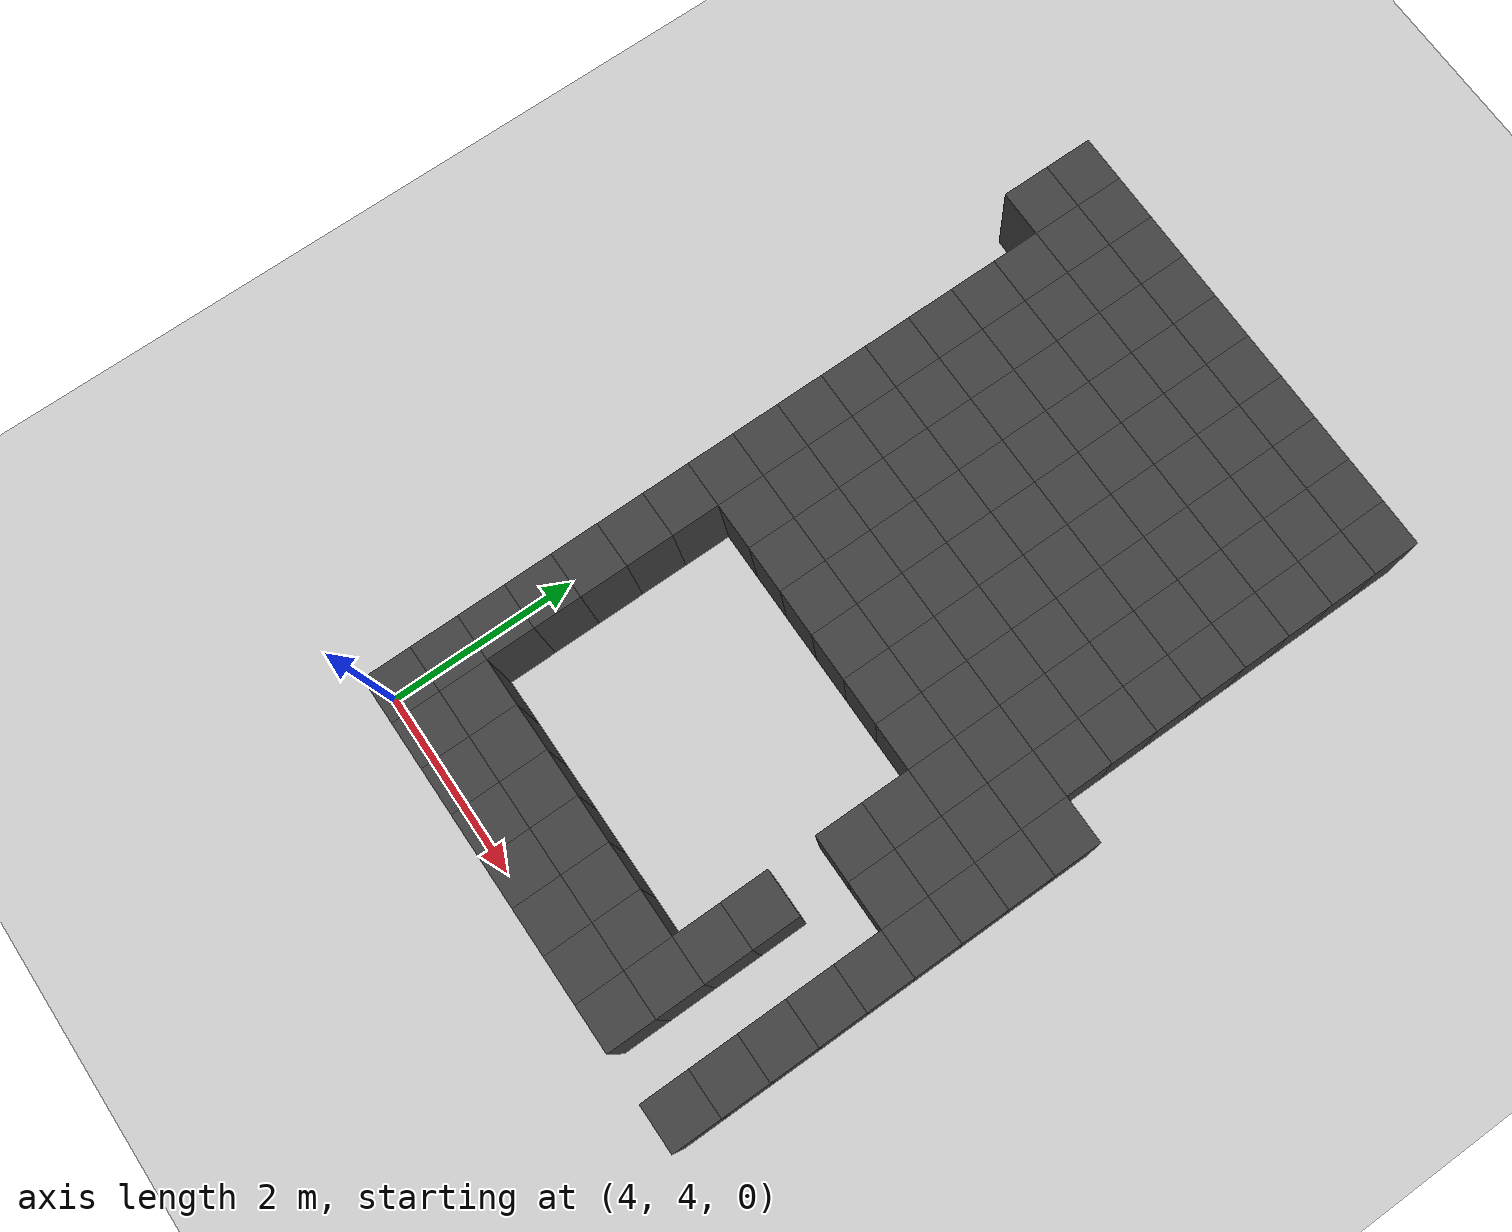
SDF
<sdf version="1.7">
 <world name="map_10777">
  <model name="ground_plane">
   <static>true</static>
   <link name="link">
    <collision name="collision">
     <geometry><plane><normal>0 0 1</normal><size>200 200</size></plane></geometry>
    </collision>
    <visual name="visual">
     <geometry><plane><normal>0 0 1</normal><size>200 200</size></plane></geometry>
     <material><ambient>0.8 0.8 0.8 1</ambient><diffuse>0.8 0.8 0.8 1</diffuse></material>
    </visual>
   </link>
  </model>
  <model name="maze_environment">
   <static>true</static>
   <link name="wall_32">
    <pose>3.750 12.250 0.500 0 0 0</pose>
    <collision name="col"><geometry><box><size>0.5 0.5 1.0</size></box></geometry></collision>
    <visual name="vis">
     <geometry><box><size>0.5 0.5 1.0</size></box></geometry>
     <material><ambient>0.15 0.15 0.15 1</ambient><diffuse>0.25 0.25 0.25 1</diffuse></material>
    </visual>
   </link>
   <link name="wall_33">
    <pose>4.250 12.250 0.500 0 0 0</pose>
    <collision name="col"><geometry><box><size>0.5 0.5 1.0</size></box></geometry></collision>
    <visual name="vis">
     <geometry><box><size>0.5 0.5 1.0</size></box></geometry>
     <material><ambient>0.15 0.15 0.15 1</ambient><diffuse>0.25 0.25 0.25 1</diffuse></material>
    </visual>
   </link>
   <link name="wall_34">
    <pose>4.750 12.250 0.500 0 0 0</pose>
    <collision name="col"><geometry><box><size>0.5 0.5 1.0</size></box></geometry></collision>
    <visual name="vis">
     <geometry><box><size>0.5 0.5 1.0</size></box></geometry>
     <material><ambient>0.15 0.15 0.15 1</ambient><diffuse>0.25 0.25 0.25 1</diffuse></material>
    </visual>
   </link>
   <link name="wall_35">
    <pose>5.250 12.250 0.500 0 0 0</pose>
    <collision name="col"><geometry><box><size>0.5 0.5 1.0</size></box></geometry></collision>
    <visual name="vis">
     <geometry><box><size>0.5 0.5 1.0</size></box></geometry>
     <material><ambient>0.15 0.15 0.15 1</ambient><diffuse>0.25 0.25 0.25 1</diffuse></material>
    </visual>
   </link>
   <link name="wall_36">
    <pose>5.750 12.250 0.500 0 0 0</pose>
    <collision name="col"><geometry><box><size>0.5 0.5 1.0</size></box></geometry></collision>
    <visual name="vis">
     <geometry><box><size>0.5 0.5 1.0</size></box></geometry>
     <material><ambient>0.15 0.15 0.15 1</ambient><diffuse>0.25 0.25 0.25 1</diffuse></material>
    </visual>
   </link>
   <link name="wall_37">
    <pose>6.250 12.250 0.500 0 0 0</pose>
    <collision name="col"><geometry><box><size>0.5 0.5 1.0</size></box></geometry></collision>
    <visual name="vis">
     <geometry><box><size>0.5 0.5 1.0</size></box></geometry>
     <material><ambient>0.15 0.15 0.15 1</ambient><diffuse>0.25 0.25 0.25 1</diffuse></material>
    </visual>
   </link>
   <link name="wall_38">
    <pose>6.750 12.250 0.500 0 0 0</pose>
    <collision name="col"><geometry><box><size>0.5 0.5 1.0</size></box></geometry></collision>
    <visual name="vis">
     <geometry><box><size>0.5 0.5 1.0</size></box></geometry>
     <material><ambient>0.15 0.15 0.15 1</ambient><diffuse>0.25 0.25 0.25 1</diffuse></material>
    </visual>
   </link>
   <link name="wall_39">
    <pose>7.250 12.250 0.500 0 0 0</pose>
    <collision name="col"><geometry><box><size>0.5 0.5 1.0</size></box></geometry></collision>
    <visual name="vis">
     <geometry><box><size>0.5 0.5 1.0</size></box></geometry>
     <material><ambient>0.15 0.15 0.15 1</ambient><diffuse>0.25 0.25 0.25 1</diffuse></material>
    </visual>
   </link>
   <link name="wall_40">
    <pose>7.750 12.250 0.500 0 0 0</pose>
    <collision name="col"><geometry><box><size>0.5 0.5 1.0</size></box></geometry></collision>
    <visual name="vis">
     <geometry><box><size>0.5 0.5 1.0</size></box></geometry>
     <material><ambient>0.15 0.15 0.15 1</ambient><diffuse>0.25 0.25 0.25 1</diffuse></material>
    </visual>
   </link>
   <link name="wall_41">
    <pose>8.250 12.250 0.500 0 0 0</pose>
    <collision name="col"><geometry><box><size>0.5 0.5 1.0</size></box></geometry></collision>
    <visual name="vis">
     <geometry><box><size>0.5 0.5 1.0</size></box></geometry>
     <material><ambient>0.15 0.15 0.15 1</ambient><diffuse>0.25 0.25 0.25 1</diffuse></material>
    </visual>
   </link>
   <link name="wall_79">
    <pose>3.750 11.750 0.500 0 0 0</pose>
    <collision name="col"><geometry><box><size>0.5 0.5 1.0</size></box></geometry></collision>
    <visual name="vis">
     <geometry><box><size>0.5 0.5 1.0</size></box></geometry>
     <material><ambient>0.15 0.15 0.15 1</ambient><diffuse>0.25 0.25 0.25 1</diffuse></material>
    </visual>
   </link>
   <link name="wall_80">
    <pose>4.250 11.750 0.500 0 0 0</pose>
    <collision name="col"><geometry><box><size>0.5 0.5 1.0</size></box></geometry></collision>
    <visual name="vis">
     <geometry><box><size>0.5 0.5 1.0</size></box></geometry>
     <material><ambient>0.15 0.15 0.15 1</ambient><diffuse>0.25 0.25 0.25 1</diffuse></material>
    </visual>
   </link>
   <link name="wall_81">
    <pose>4.750 11.750 0.500 0 0 0</pose>
    <collision name="col"><geometry><box><size>0.5 0.5 1.0</size></box></geometry></collision>
    <visual name="vis">
     <geometry><box><size>0.5 0.5 1.0</size></box></geometry>
     <material><ambient>0.15 0.15 0.15 1</ambient><diffuse>0.25 0.25 0.25 1</diffuse></material>
    </visual>
   </link>
   <link name="wall_82">
    <pose>5.250 11.750 0.500 0 0 0</pose>
    <collision name="col"><geometry><box><size>0.5 0.5 1.0</size></box></geometry></collision>
    <visual name="vis">
     <geometry><box><size>0.5 0.5 1.0</size></box></geometry>
     <material><ambient>0.15 0.15 0.15 1</ambient><diffuse>0.25 0.25 0.25 1</diffuse></material>
    </visual>
   </link>
   <link name="wall_83">
    <pose>5.750 11.750 0.500 0 0 0</pose>
    <collision name="col"><geometry><box><size>0.5 0.5 1.0</size></box></geometry></collision>
    <visual name="vis">
     <geometry><box><size>0.5 0.5 1.0</size></box></geometry>
     <material><ambient>0.15 0.15 0.15 1</ambient><diffuse>0.25 0.25 0.25 1</diffuse></material>
    </visual>
   </link>
   <link name="wall_84">
    <pose>6.250 11.750 0.500 0 0 0</pose>
    <collision name="col"><geometry><box><size>0.5 0.5 1.0</size></box></geometry></collision>
    <visual name="vis">
     <geometry><box><size>0.5 0.5 1.0</size></box></geometry>
     <material><ambient>0.15 0.15 0.15 1</ambient><diffuse>0.25 0.25 0.25 1</diffuse></material>
    </visual>
   </link>
   <link name="wall_85">
    <pose>6.750 11.750 0.500 0 0 0</pose>
    <collision name="col"><geometry><box><size>0.5 0.5 1.0</size></box></geometry></collision>
    <visual name="vis">
     <geometry><box><size>0.5 0.5 1.0</size></box></geometry>
     <material><ambient>0.15 0.15 0.15 1</ambient><diffuse>0.25 0.25 0.25 1</diffuse></material>
    </visual>
   </link>
   <link name="wall_86">
    <pose>7.250 11.750 0.500 0 0 0</pose>
    <collision name="col"><geometry><box><size>0.5 0.5 1.0</size></box></geometry></collision>
    <visual name="vis">
     <geometry><box><size>0.5 0.5 1.0</size></box></geometry>
     <material><ambient>0.15 0.15 0.15 1</ambient><diffuse>0.25 0.25 0.25 1</diffuse></material>
    </visual>
   </link>
   <link name="wall_87">
    <pose>7.750 11.750 0.500 0 0 0</pose>
    <collision name="col"><geometry><box><size>0.5 0.5 1.0</size></box></geometry></collision>
    <visual name="vis">
     <geometry><box><size>0.5 0.5 1.0</size></box></geometry>
     <material><ambient>0.15 0.15 0.15 1</ambient><diffuse>0.25 0.25 0.25 1</diffuse></material>
    </visual>
   </link>
   <link name="wall_88">
    <pose>8.250 11.750 0.500 0 0 0</pose>
    <collision name="col"><geometry><box><size>0.5 0.5 1.0</size></box></geometry></collision>
    <visual name="vis">
     <geometry><box><size>0.5 0.5 1.0</size></box></geometry>
     <material><ambient>0.15 0.15 0.15 1</ambient><diffuse>0.25 0.25 0.25 1</diffuse></material>
    </visual>
   </link>
   <link name="wall_127">
    <pose>4.250 11.250 0.500 0 0 0</pose>
    <collision name="col"><geometry><box><size>0.5 0.5 1.0</size></box></geometry></collision>
    <visual name="vis">
     <geometry><box><size>0.5 0.5 1.0</size></box></geometry>
     <material><ambient>0.15 0.15 0.15 1</ambient><diffuse>0.25 0.25 0.25 1</diffuse></material>
    </visual>
   </link>
   <link name="wall_128">
    <pose>4.750 11.250 0.500 0 0 0</pose>
    <collision name="col"><geometry><box><size>0.5 0.5 1.0</size></box></geometry></collision>
    <visual name="vis">
     <geometry><box><size>0.5 0.5 1.0</size></box></geometry>
     <material><ambient>0.15 0.15 0.15 1</ambient><diffuse>0.25 0.25 0.25 1</diffuse></material>
    </visual>
   </link>
   <link name="wall_129">
    <pose>5.250 11.250 0.500 0 0 0</pose>
    <collision name="col"><geometry><box><size>0.5 0.5 1.0</size></box></geometry></collision>
    <visual name="vis">
     <geometry><box><size>0.5 0.5 1.0</size></box></geometry>
     <material><ambient>0.15 0.15 0.15 1</ambient><diffuse>0.25 0.25 0.25 1</diffuse></material>
    </visual>
   </link>
   <link name="wall_130">
    <pose>5.750 11.250 0.500 0 0 0</pose>
    <collision name="col"><geometry><box><size>0.5 0.5 1.0</size></box></geometry></collision>
    <visual name="vis">
     <geometry><box><size>0.5 0.5 1.0</size></box></geometry>
     <material><ambient>0.15 0.15 0.15 1</ambient><diffuse>0.25 0.25 0.25 1</diffuse></material>
    </visual>
   </link>
   <link name="wall_131">
    <pose>6.250 11.250 0.500 0 0 0</pose>
    <collision name="col"><geometry><box><size>0.5 0.5 1.0</size></box></geometry></collision>
    <visual name="vis">
     <geometry><box><size>0.5 0.5 1.0</size></box></geometry>
     <material><ambient>0.15 0.15 0.15 1</ambient><diffuse>0.25 0.25 0.25 1</diffuse></material>
    </visual>
   </link>
   <link name="wall_132">
    <pose>6.750 11.250 0.500 0 0 0</pose>
    <collision name="col"><geometry><box><size>0.5 0.5 1.0</size></box></geometry></collision>
    <visual name="vis">
     <geometry><box><size>0.5 0.5 1.0</size></box></geometry>
     <material><ambient>0.15 0.15 0.15 1</ambient><diffuse>0.25 0.25 0.25 1</diffuse></material>
    </visual>
   </link>
   <link name="wall_133">
    <pose>7.250 11.250 0.500 0 0 0</pose>
    <collision name="col"><geometry><box><size>0.5 0.5 1.0</size></box></geometry></collision>
    <visual name="vis">
     <geometry><box><size>0.5 0.5 1.0</size></box></geometry>
     <material><ambient>0.15 0.15 0.15 1</ambient><diffuse>0.25 0.25 0.25 1</diffuse></material>
    </visual>
   </link>
   <link name="wall_134">
    <pose>7.750 11.250 0.500 0 0 0</pose>
    <collision name="col"><geometry><box><size>0.5 0.5 1.0</size></box></geometry></collision>
    <visual name="vis">
     <geometry><box><size>0.5 0.5 1.0</size></box></geometry>
     <material><ambient>0.15 0.15 0.15 1</ambient><diffuse>0.25 0.25 0.25 1</diffuse></material>
    </visual>
   </link>
   <link name="wall_135">
    <pose>8.250 11.250 0.500 0 0 0</pose>
    <collision name="col"><geometry><box><size>0.5 0.5 1.0</size></box></geometry></collision>
    <visual name="vis">
     <geometry><box><size>0.5 0.5 1.0</size></box></geometry>
     <material><ambient>0.15 0.15 0.15 1</ambient><diffuse>0.25 0.25 0.25 1</diffuse></material>
    </visual>
   </link>
   <link name="wall_174">
    <pose>4.250 10.750 0.500 0 0 0</pose>
    <collision name="col"><geometry><box><size>0.5 0.5 1.0</size></box></geometry></collision>
    <visual name="vis">
     <geometry><box><size>0.5 0.5 1.0</size></box></geometry>
     <material><ambient>0.15 0.15 0.15 1</ambient><diffuse>0.25 0.25 0.25 1</diffuse></material>
    </visual>
   </link>
   <link name="wall_175">
    <pose>4.750 10.750 0.500 0 0 0</pose>
    <collision name="col"><geometry><box><size>0.5 0.5 1.0</size></box></geometry></collision>
    <visual name="vis">
     <geometry><box><size>0.5 0.5 1.0</size></box></geometry>
     <material><ambient>0.15 0.15 0.15 1</ambient><diffuse>0.25 0.25 0.25 1</diffuse></material>
    </visual>
   </link>
   <link name="wall_176">
    <pose>5.250 10.750 0.500 0 0 0</pose>
    <collision name="col"><geometry><box><size>0.5 0.5 1.0</size></box></geometry></collision>
    <visual name="vis">
     <geometry><box><size>0.5 0.5 1.0</size></box></geometry>
     <material><ambient>0.15 0.15 0.15 1</ambient><diffuse>0.25 0.25 0.25 1</diffuse></material>
    </visual>
   </link>
   <link name="wall_177">
    <pose>5.750 10.750 0.500 0 0 0</pose>
    <collision name="col"><geometry><box><size>0.5 0.5 1.0</size></box></geometry></collision>
    <visual name="vis">
     <geometry><box><size>0.5 0.5 1.0</size></box></geometry>
     <material><ambient>0.15 0.15 0.15 1</ambient><diffuse>0.25 0.25 0.25 1</diffuse></material>
    </visual>
   </link>
   <link name="wall_178">
    <pose>6.250 10.750 0.500 0 0 0</pose>
    <collision name="col"><geometry><box><size>0.5 0.5 1.0</size></box></geometry></collision>
    <visual name="vis">
     <geometry><box><size>0.5 0.5 1.0</size></box></geometry>
     <material><ambient>0.15 0.15 0.15 1</ambient><diffuse>0.25 0.25 0.25 1</diffuse></material>
    </visual>
   </link>
   <link name="wall_179">
    <pose>6.750 10.750 0.500 0 0 0</pose>
    <collision name="col"><geometry><box><size>0.5 0.5 1.0</size></box></geometry></collision>
    <visual name="vis">
     <geometry><box><size>0.5 0.5 1.0</size></box></geometry>
     <material><ambient>0.15 0.15 0.15 1</ambient><diffuse>0.25 0.25 0.25 1</diffuse></material>
    </visual>
   </link>
   <link name="wall_180">
    <pose>7.250 10.750 0.500 0 0 0</pose>
    <collision name="col"><geometry><box><size>0.5 0.5 1.0</size></box></geometry></collision>
    <visual name="vis">
     <geometry><box><size>0.5 0.5 1.0</size></box></geometry>
     <material><ambient>0.15 0.15 0.15 1</ambient><diffuse>0.25 0.25 0.25 1</diffuse></material>
    </visual>
   </link>
   <link name="wall_181">
    <pose>7.750 10.750 0.500 0 0 0</pose>
    <collision name="col"><geometry><box><size>0.5 0.5 1.0</size></box></geometry></collision>
    <visual name="vis">
     <geometry><box><size>0.5 0.5 1.0</size></box></geometry>
     <material><ambient>0.15 0.15 0.15 1</ambient><diffuse>0.25 0.25 0.25 1</diffuse></material>
    </visual>
   </link>
   <link name="wall_182">
    <pose>8.250 10.750 0.500 0 0 0</pose>
    <collision name="col"><geometry><box><size>0.5 0.5 1.0</size></box></geometry></collision>
    <visual name="vis">
     <geometry><box><size>0.5 0.5 1.0</size></box></geometry>
     <material><ambient>0.15 0.15 0.15 1</ambient><diffuse>0.25 0.25 0.25 1</diffuse></material>
    </visual>
   </link>
   <link name="wall_223">
    <pose>4.250 10.250 0.500 0 0 0</pose>
    <collision name="col"><geometry><box><size>0.5 0.5 1.0</size></box></geometry></collision>
    <visual name="vis">
     <geometry><box><size>0.5 0.5 1.0</size></box></geometry>
     <material><ambient>0.15 0.15 0.15 1</ambient><diffuse>0.25 0.25 0.25 1</diffuse></material>
    </visual>
   </link>
   <link name="wall_224">
    <pose>4.750 10.250 0.500 0 0 0</pose>
    <collision name="col"><geometry><box><size>0.5 0.5 1.0</size></box></geometry></collision>
    <visual name="vis">
     <geometry><box><size>0.5 0.5 1.0</size></box></geometry>
     <material><ambient>0.15 0.15 0.15 1</ambient><diffuse>0.25 0.25 0.25 1</diffuse></material>
    </visual>
   </link>
   <link name="wall_225">
    <pose>5.250 10.250 0.500 0 0 0</pose>
    <collision name="col"><geometry><box><size>0.5 0.5 1.0</size></box></geometry></collision>
    <visual name="vis">
     <geometry><box><size>0.5 0.5 1.0</size></box></geometry>
     <material><ambient>0.15 0.15 0.15 1</ambient><diffuse>0.25 0.25 0.25 1</diffuse></material>
    </visual>
   </link>
   <link name="wall_226">
    <pose>5.750 10.250 0.500 0 0 0</pose>
    <collision name="col"><geometry><box><size>0.5 0.5 1.0</size></box></geometry></collision>
    <visual name="vis">
     <geometry><box><size>0.5 0.5 1.0</size></box></geometry>
     <material><ambient>0.15 0.15 0.15 1</ambient><diffuse>0.25 0.25 0.25 1</diffuse></material>
    </visual>
   </link>
   <link name="wall_227">
    <pose>6.250 10.250 0.500 0 0 0</pose>
    <collision name="col"><geometry><box><size>0.5 0.5 1.0</size></box></geometry></collision>
    <visual name="vis">
     <geometry><box><size>0.5 0.5 1.0</size></box></geometry>
     <material><ambient>0.15 0.15 0.15 1</ambient><diffuse>0.25 0.25 0.25 1</diffuse></material>
    </visual>
   </link>
   <link name="wall_228">
    <pose>6.750 10.250 0.500 0 0 0</pose>
    <collision name="col"><geometry><box><size>0.5 0.5 1.0</size></box></geometry></collision>
    <visual name="vis">
     <geometry><box><size>0.5 0.5 1.0</size></box></geometry>
     <material><ambient>0.15 0.15 0.15 1</ambient><diffuse>0.25 0.25 0.25 1</diffuse></material>
    </visual>
   </link>
   <link name="wall_229">
    <pose>7.250 10.250 0.500 0 0 0</pose>
    <collision name="col"><geometry><box><size>0.5 0.5 1.0</size></box></geometry></collision>
    <visual name="vis">
     <geometry><box><size>0.5 0.5 1.0</size></box></geometry>
     <material><ambient>0.15 0.15 0.15 1</ambient><diffuse>0.25 0.25 0.25 1</diffuse></material>
    </visual>
   </link>
   <link name="wall_230">
    <pose>7.750 10.250 0.500 0 0 0</pose>
    <collision name="col"><geometry><box><size>0.5 0.5 1.0</size></box></geometry></collision>
    <visual name="vis">
     <geometry><box><size>0.5 0.5 1.0</size></box></geometry>
     <material><ambient>0.15 0.15 0.15 1</ambient><diffuse>0.25 0.25 0.25 1</diffuse></material>
    </visual>
   </link>
   <link name="wall_231">
    <pose>8.250 10.250 0.500 0 0 0</pose>
    <collision name="col"><geometry><box><size>0.5 0.5 1.0</size></box></geometry></collision>
    <visual name="vis">
     <geometry><box><size>0.5 0.5 1.0</size></box></geometry>
     <material><ambient>0.15 0.15 0.15 1</ambient><diffuse>0.25 0.25 0.25 1</diffuse></material>
    </visual>
   </link>
   <link name="wall_272">
    <pose>4.250 9.750 0.500 0 0 0</pose>
    <collision name="col"><geometry><box><size>0.5 0.5 1.0</size></box></geometry></collision>
    <visual name="vis">
     <geometry><box><size>0.5 0.5 1.0</size></box></geometry>
     <material><ambient>0.15 0.15 0.15 1</ambient><diffuse>0.25 0.25 0.25 1</diffuse></material>
    </visual>
   </link>
   <link name="wall_273">
    <pose>4.750 9.750 0.500 0 0 0</pose>
    <collision name="col"><geometry><box><size>0.5 0.5 1.0</size></box></geometry></collision>
    <visual name="vis">
     <geometry><box><size>0.5 0.5 1.0</size></box></geometry>
     <material><ambient>0.15 0.15 0.15 1</ambient><diffuse>0.25 0.25 0.25 1</diffuse></material>
    </visual>
   </link>
   <link name="wall_274">
    <pose>5.250 9.750 0.500 0 0 0</pose>
    <collision name="col"><geometry><box><size>0.5 0.5 1.0</size></box></geometry></collision>
    <visual name="vis">
     <geometry><box><size>0.5 0.5 1.0</size></box></geometry>
     <material><ambient>0.15 0.15 0.15 1</ambient><diffuse>0.25 0.25 0.25 1</diffuse></material>
    </visual>
   </link>
   <link name="wall_275">
    <pose>5.750 9.750 0.500 0 0 0</pose>
    <collision name="col"><geometry><box><size>0.5 0.5 1.0</size></box></geometry></collision>
    <visual name="vis">
     <geometry><box><size>0.5 0.5 1.0</size></box></geometry>
     <material><ambient>0.15 0.15 0.15 1</ambient><diffuse>0.25 0.25 0.25 1</diffuse></material>
    </visual>
   </link>
   <link name="wall_276">
    <pose>6.250 9.750 0.500 0 0 0</pose>
    <collision name="col"><geometry><box><size>0.5 0.5 1.0</size></box></geometry></collision>
    <visual name="vis">
     <geometry><box><size>0.5 0.5 1.0</size></box></geometry>
     <material><ambient>0.15 0.15 0.15 1</ambient><diffuse>0.25 0.25 0.25 1</diffuse></material>
    </visual>
   </link>
   <link name="wall_277">
    <pose>6.750 9.750 0.500 0 0 0</pose>
    <collision name="col"><geometry><box><size>0.5 0.5 1.0</size></box></geometry></collision>
    <visual name="vis">
     <geometry><box><size>0.5 0.5 1.0</size></box></geometry>
     <material><ambient>0.15 0.15 0.15 1</ambient><diffuse>0.25 0.25 0.25 1</diffuse></material>
    </visual>
   </link>
   <link name="wall_278">
    <pose>7.250 9.750 0.500 0 0 0</pose>
    <collision name="col"><geometry><box><size>0.5 0.5 1.0</size></box></geometry></collision>
    <visual name="vis">
     <geometry><box><size>0.5 0.5 1.0</size></box></geometry>
     <material><ambient>0.15 0.15 0.15 1</ambient><diffuse>0.25 0.25 0.25 1</diffuse></material>
    </visual>
   </link>
   <link name="wall_279">
    <pose>7.750 9.750 0.500 0 0 0</pose>
    <collision name="col"><geometry><box><size>0.5 0.5 1.0</size></box></geometry></collision>
    <visual name="vis">
     <geometry><box><size>0.5 0.5 1.0</size></box></geometry>
     <material><ambient>0.15 0.15 0.15 1</ambient><diffuse>0.25 0.25 0.25 1</diffuse></material>
    </visual>
   </link>
   <link name="wall_280">
    <pose>8.250 9.750 0.500 0 0 0</pose>
    <collision name="col"><geometry><box><size>0.5 0.5 1.0</size></box></geometry></collision>
    <visual name="vis">
     <geometry><box><size>0.5 0.5 1.0</size></box></geometry>
     <material><ambient>0.15 0.15 0.15 1</ambient><diffuse>0.25 0.25 0.25 1</diffuse></material>
    </visual>
   </link>
   <link name="wall_321">
    <pose>4.250 9.250 0.500 0 0 0</pose>
    <collision name="col"><geometry><box><size>0.5 0.5 1.0</size></box></geometry></collision>
    <visual name="vis">
     <geometry><box><size>0.5 0.5 1.0</size></box></geometry>
     <material><ambient>0.15 0.15 0.15 1</ambient><diffuse>0.25 0.25 0.25 1</diffuse></material>
    </visual>
   </link>
   <link name="wall_322">
    <pose>4.750 9.250 0.500 0 0 0</pose>
    <collision name="col"><geometry><box><size>0.5 0.5 1.0</size></box></geometry></collision>
    <visual name="vis">
     <geometry><box><size>0.5 0.5 1.0</size></box></geometry>
     <material><ambient>0.15 0.15 0.15 1</ambient><diffuse>0.25 0.25 0.25 1</diffuse></material>
    </visual>
   </link>
   <link name="wall_323">
    <pose>5.250 9.250 0.500 0 0 0</pose>
    <collision name="col"><geometry><box><size>0.5 0.5 1.0</size></box></geometry></collision>
    <visual name="vis">
     <geometry><box><size>0.5 0.5 1.0</size></box></geometry>
     <material><ambient>0.15 0.15 0.15 1</ambient><diffuse>0.25 0.25 0.25 1</diffuse></material>
    </visual>
   </link>
   <link name="wall_324">
    <pose>5.750 9.250 0.500 0 0 0</pose>
    <collision name="col"><geometry><box><size>0.5 0.5 1.0</size></box></geometry></collision>
    <visual name="vis">
     <geometry><box><size>0.5 0.5 1.0</size></box></geometry>
     <material><ambient>0.15 0.15 0.15 1</ambient><diffuse>0.25 0.25 0.25 1</diffuse></material>
    </visual>
   </link>
   <link name="wall_325">
    <pose>6.250 9.250 0.500 0 0 0</pose>
    <collision name="col"><geometry><box><size>0.5 0.5 1.0</size></box></geometry></collision>
    <visual name="vis">
     <geometry><box><size>0.5 0.5 1.0</size></box></geometry>
     <material><ambient>0.15 0.15 0.15 1</ambient><diffuse>0.25 0.25 0.25 1</diffuse></material>
    </visual>
   </link>
   <link name="wall_326">
    <pose>6.750 9.250 0.500 0 0 0</pose>
    <collision name="col"><geometry><box><size>0.5 0.5 1.0</size></box></geometry></collision>
    <visual name="vis">
     <geometry><box><size>0.5 0.5 1.0</size></box></geometry>
     <material><ambient>0.15 0.15 0.15 1</ambient><diffuse>0.25 0.25 0.25 1</diffuse></material>
    </visual>
   </link>
   <link name="wall_327">
    <pose>7.250 9.250 0.500 0 0 0</pose>
    <collision name="col"><geometry><box><size>0.5 0.5 1.0</size></box></geometry></collision>
    <visual name="vis">
     <geometry><box><size>0.5 0.5 1.0</size></box></geometry>
     <material><ambient>0.15 0.15 0.15 1</ambient><diffuse>0.25 0.25 0.25 1</diffuse></material>
    </visual>
   </link>
   <link name="wall_328">
    <pose>7.750 9.250 0.500 0 0 0</pose>
    <collision name="col"><geometry><box><size>0.5 0.5 1.0</size></box></geometry></collision>
    <visual name="vis">
     <geometry><box><size>0.5 0.5 1.0</size></box></geometry>
     <material><ambient>0.15 0.15 0.15 1</ambient><diffuse>0.25 0.25 0.25 1</diffuse></material>
    </visual>
   </link>
   <link name="wall_329">
    <pose>8.250 9.250 0.500 0 0 0</pose>
    <collision name="col"><geometry><box><size>0.5 0.5 1.0</size></box></geometry></collision>
    <visual name="vis">
     <geometry><box><size>0.5 0.5 1.0</size></box></geometry>
     <material><ambient>0.15 0.15 0.15 1</ambient><diffuse>0.25 0.25 0.25 1</diffuse></material>
    </visual>
   </link>
   <link name="wall_370">
    <pose>4.250 8.750 0.500 0 0 0</pose>
    <collision name="col"><geometry><box><size>0.5 0.5 1.0</size></box></geometry></collision>
    <visual name="vis">
     <geometry><box><size>0.5 0.5 1.0</size></box></geometry>
     <material><ambient>0.15 0.15 0.15 1</ambient><diffuse>0.25 0.25 0.25 1</diffuse></material>
    </visual>
   </link>
   <link name="wall_371">
    <pose>4.750 8.750 0.500 0 0 0</pose>
    <collision name="col"><geometry><box><size>0.5 0.5 1.0</size></box></geometry></collision>
    <visual name="vis">
     <geometry><box><size>0.5 0.5 1.0</size></box></geometry>
     <material><ambient>0.15 0.15 0.15 1</ambient><diffuse>0.25 0.25 0.25 1</diffuse></material>
    </visual>
   </link>
   <link name="wall_372">
    <pose>5.250 8.750 0.500 0 0 0</pose>
    <collision name="col"><geometry><box><size>0.5 0.5 1.0</size></box></geometry></collision>
    <visual name="vis">
     <geometry><box><size>0.5 0.5 1.0</size></box></geometry>
     <material><ambient>0.15 0.15 0.15 1</ambient><diffuse>0.25 0.25 0.25 1</diffuse></material>
    </visual>
   </link>
   <link name="wall_373">
    <pose>5.750 8.750 0.500 0 0 0</pose>
    <collision name="col"><geometry><box><size>0.5 0.5 1.0</size></box></geometry></collision>
    <visual name="vis">
     <geometry><box><size>0.5 0.5 1.0</size></box></geometry>
     <material><ambient>0.15 0.15 0.15 1</ambient><diffuse>0.25 0.25 0.25 1</diffuse></material>
    </visual>
   </link>
   <link name="wall_374">
    <pose>6.250 8.750 0.500 0 0 0</pose>
    <collision name="col"><geometry><box><size>0.5 0.5 1.0</size></box></geometry></collision>
    <visual name="vis">
     <geometry><box><size>0.5 0.5 1.0</size></box></geometry>
     <material><ambient>0.15 0.15 0.15 1</ambient><diffuse>0.25 0.25 0.25 1</diffuse></material>
    </visual>
   </link>
   <link name="wall_375">
    <pose>6.750 8.750 0.500 0 0 0</pose>
    <collision name="col"><geometry><box><size>0.5 0.5 1.0</size></box></geometry></collision>
    <visual name="vis">
     <geometry><box><size>0.5 0.5 1.0</size></box></geometry>
     <material><ambient>0.15 0.15 0.15 1</ambient><diffuse>0.25 0.25 0.25 1</diffuse></material>
    </visual>
   </link>
   <link name="wall_376">
    <pose>7.250 8.750 0.500 0 0 0</pose>
    <collision name="col"><geometry><box><size>0.5 0.5 1.0</size></box></geometry></collision>
    <visual name="vis">
     <geometry><box><size>0.5 0.5 1.0</size></box></geometry>
     <material><ambient>0.15 0.15 0.15 1</ambient><diffuse>0.25 0.25 0.25 1</diffuse></material>
    </visual>
   </link>
   <link name="wall_377">
    <pose>7.750 8.750 0.500 0 0 0</pose>
    <collision name="col"><geometry><box><size>0.5 0.5 1.0</size></box></geometry></collision>
    <visual name="vis">
     <geometry><box><size>0.5 0.5 1.0</size></box></geometry>
     <material><ambient>0.15 0.15 0.15 1</ambient><diffuse>0.25 0.25 0.25 1</diffuse></material>
    </visual>
   </link>
   <link name="wall_378">
    <pose>8.250 8.750 0.500 0 0 0</pose>
    <collision name="col"><geometry><box><size>0.5 0.5 1.0</size></box></geometry></collision>
    <visual name="vis">
     <geometry><box><size>0.5 0.5 1.0</size></box></geometry>
     <material><ambient>0.15 0.15 0.15 1</ambient><diffuse>0.25 0.25 0.25 1</diffuse></material>
    </visual>
   </link>
   <link name="wall_419">
    <pose>4.250 8.250 0.500 0 0 0</pose>
    <collision name="col"><geometry><box><size>0.5 0.5 1.0</size></box></geometry></collision>
    <visual name="vis">
     <geometry><box><size>0.5 0.5 1.0</size></box></geometry>
     <material><ambient>0.15 0.15 0.15 1</ambient><diffuse>0.25 0.25 0.25 1</diffuse></material>
    </visual>
   </link>
   <link name="wall_420">
    <pose>4.750 8.250 0.500 0 0 0</pose>
    <collision name="col"><geometry><box><size>0.5 0.5 1.0</size></box></geometry></collision>
    <visual name="vis">
     <geometry><box><size>0.5 0.5 1.0</size></box></geometry>
     <material><ambient>0.15 0.15 0.15 1</ambient><diffuse>0.25 0.25 0.25 1</diffuse></material>
    </visual>
   </link>
   <link name="wall_421">
    <pose>5.250 8.250 0.500 0 0 0</pose>
    <collision name="col"><geometry><box><size>0.5 0.5 1.0</size></box></geometry></collision>
    <visual name="vis">
     <geometry><box><size>0.5 0.5 1.0</size></box></geometry>
     <material><ambient>0.15 0.15 0.15 1</ambient><diffuse>0.25 0.25 0.25 1</diffuse></material>
    </visual>
   </link>
   <link name="wall_422">
    <pose>5.750 8.250 0.500 0 0 0</pose>
    <collision name="col"><geometry><box><size>0.5 0.5 1.0</size></box></geometry></collision>
    <visual name="vis">
     <geometry><box><size>0.5 0.5 1.0</size></box></geometry>
     <material><ambient>0.15 0.15 0.15 1</ambient><diffuse>0.25 0.25 0.25 1</diffuse></material>
    </visual>
   </link>
   <link name="wall_423">
    <pose>6.250 8.250 0.500 0 0 0</pose>
    <collision name="col"><geometry><box><size>0.5 0.5 1.0</size></box></geometry></collision>
    <visual name="vis">
     <geometry><box><size>0.5 0.5 1.0</size></box></geometry>
     <material><ambient>0.15 0.15 0.15 1</ambient><diffuse>0.25 0.25 0.25 1</diffuse></material>
    </visual>
   </link>
   <link name="wall_424">
    <pose>6.750 8.250 0.500 0 0 0</pose>
    <collision name="col"><geometry><box><size>0.5 0.5 1.0</size></box></geometry></collision>
    <visual name="vis">
     <geometry><box><size>0.5 0.5 1.0</size></box></geometry>
     <material><ambient>0.15 0.15 0.15 1</ambient><diffuse>0.25 0.25 0.25 1</diffuse></material>
    </visual>
   </link>
   <link name="wall_425">
    <pose>7.250 8.250 0.500 0 0 0</pose>
    <collision name="col"><geometry><box><size>0.5 0.5 1.0</size></box></geometry></collision>
    <visual name="vis">
     <geometry><box><size>0.5 0.5 1.0</size></box></geometry>
     <material><ambient>0.15 0.15 0.15 1</ambient><diffuse>0.25 0.25 0.25 1</diffuse></material>
    </visual>
   </link>
   <link name="wall_426">
    <pose>7.750 8.250 0.500 0 0 0</pose>
    <collision name="col"><geometry><box><size>0.5 0.5 1.0</size></box></geometry></collision>
    <visual name="vis">
     <geometry><box><size>0.5 0.5 1.0</size></box></geometry>
     <material><ambient>0.15 0.15 0.15 1</ambient><diffuse>0.25 0.25 0.25 1</diffuse></material>
    </visual>
   </link>
   <link name="wall_427">
    <pose>8.250 8.250 0.500 0 0 0</pose>
    <collision name="col"><geometry><box><size>0.5 0.5 1.0</size></box></geometry></collision>
    <visual name="vis">
     <geometry><box><size>0.5 0.5 1.0</size></box></geometry>
     <material><ambient>0.15 0.15 0.15 1</ambient><diffuse>0.25 0.25 0.25 1</diffuse></material>
    </visual>
   </link>
   <link name="wall_428">
    <pose>8.750 8.250 0.500 0 0 0</pose>
    <collision name="col"><geometry><box><size>0.5 0.5 1.0</size></box></geometry></collision>
    <visual name="vis">
     <geometry><box><size>0.5 0.5 1.0</size></box></geometry>
     <material><ambient>0.15 0.15 0.15 1</ambient><diffuse>0.25 0.25 0.25 1</diffuse></material>
    </visual>
   </link>
   <link name="wall_468">
    <pose>4.250 7.750 0.500 0 0 0</pose>
    <collision name="col"><geometry><box><size>0.5 0.5 1.0</size></box></geometry></collision>
    <visual name="vis">
     <geometry><box><size>0.5 0.5 1.0</size></box></geometry>
     <material><ambient>0.15 0.15 0.15 1</ambient><diffuse>0.25 0.25 0.25 1</diffuse></material>
    </visual>
   </link>
   <link name="wall_469">
    <pose>4.750 7.750 0.500 0 0 0</pose>
    <collision name="col"><geometry><box><size>0.5 0.5 1.0</size></box></geometry></collision>
    <visual name="vis">
     <geometry><box><size>0.5 0.5 1.0</size></box></geometry>
     <material><ambient>0.15 0.15 0.15 1</ambient><diffuse>0.25 0.25 0.25 1</diffuse></material>
    </visual>
   </link>
   <link name="wall_470">
    <pose>5.250 7.750 0.500 0 0 0</pose>
    <collision name="col"><geometry><box><size>0.5 0.5 1.0</size></box></geometry></collision>
    <visual name="vis">
     <geometry><box><size>0.5 0.5 1.0</size></box></geometry>
     <material><ambient>0.15 0.15 0.15 1</ambient><diffuse>0.25 0.25 0.25 1</diffuse></material>
    </visual>
   </link>
   <link name="wall_471">
    <pose>5.750 7.750 0.500 0 0 0</pose>
    <collision name="col"><geometry><box><size>0.5 0.5 1.0</size></box></geometry></collision>
    <visual name="vis">
     <geometry><box><size>0.5 0.5 1.0</size></box></geometry>
     <material><ambient>0.15 0.15 0.15 1</ambient><diffuse>0.25 0.25 0.25 1</diffuse></material>
    </visual>
   </link>
   <link name="wall_472">
    <pose>6.250 7.750 0.500 0 0 0</pose>
    <collision name="col"><geometry><box><size>0.5 0.5 1.0</size></box></geometry></collision>
    <visual name="vis">
     <geometry><box><size>0.5 0.5 1.0</size></box></geometry>
     <material><ambient>0.15 0.15 0.15 1</ambient><diffuse>0.25 0.25 0.25 1</diffuse></material>
    </visual>
   </link>
   <link name="wall_473">
    <pose>6.750 7.750 0.500 0 0 0</pose>
    <collision name="col"><geometry><box><size>0.5 0.5 1.0</size></box></geometry></collision>
    <visual name="vis">
     <geometry><box><size>0.5 0.5 1.0</size></box></geometry>
     <material><ambient>0.15 0.15 0.15 1</ambient><diffuse>0.25 0.25 0.25 1</diffuse></material>
    </visual>
   </link>
   <link name="wall_474">
    <pose>7.250 7.750 0.500 0 0 0</pose>
    <collision name="col"><geometry><box><size>0.5 0.5 1.0</size></box></geometry></collision>
    <visual name="vis">
     <geometry><box><size>0.5 0.5 1.0</size></box></geometry>
     <material><ambient>0.15 0.15 0.15 1</ambient><diffuse>0.25 0.25 0.25 1</diffuse></material>
    </visual>
   </link>
   <link name="wall_475">
    <pose>7.750 7.750 0.500 0 0 0</pose>
    <collision name="col"><geometry><box><size>0.5 0.5 1.0</size></box></geometry></collision>
    <visual name="vis">
     <geometry><box><size>0.5 0.5 1.0</size></box></geometry>
     <material><ambient>0.15 0.15 0.15 1</ambient><diffuse>0.25 0.25 0.25 1</diffuse></material>
    </visual>
   </link>
   <link name="wall_476">
    <pose>8.250 7.750 0.500 0 0 0</pose>
    <collision name="col"><geometry><box><size>0.5 0.5 1.0</size></box></geometry></collision>
    <visual name="vis">
     <geometry><box><size>0.5 0.5 1.0</size></box></geometry>
     <material><ambient>0.15 0.15 0.15 1</ambient><diffuse>0.25 0.25 0.25 1</diffuse></material>
    </visual>
   </link>
   <link name="wall_477">
    <pose>8.750 7.750 0.500 0 0 0</pose>
    <collision name="col"><geometry><box><size>0.5 0.5 1.0</size></box></geometry></collision>
    <visual name="vis">
     <geometry><box><size>0.5 0.5 1.0</size></box></geometry>
     <material><ambient>0.15 0.15 0.15 1</ambient><diffuse>0.25 0.25 0.25 1</diffuse></material>
    </visual>
   </link>
   <link name="wall_517">
    <pose>4.250 7.250 0.500 0 0 0</pose>
    <collision name="col"><geometry><box><size>0.5 0.5 1.0</size></box></geometry></collision>
    <visual name="vis">
     <geometry><box><size>0.5 0.5 1.0</size></box></geometry>
     <material><ambient>0.15 0.15 0.15 1</ambient><diffuse>0.25 0.25 0.25 1</diffuse></material>
    </visual>
   </link>
   <link name="wall_518">
    <pose>7.750 7.250 0.500 0 0 0</pose>
    <collision name="col"><geometry><box><size>0.5 0.5 1.0</size></box></geometry></collision>
    <visual name="vis">
     <geometry><box><size>0.5 0.5 1.0</size></box></geometry>
     <material><ambient>0.15 0.15 0.15 1</ambient><diffuse>0.25 0.25 0.25 1</diffuse></material>
    </visual>
   </link>
   <link name="wall_519">
    <pose>8.250 7.250 0.500 0 0 0</pose>
    <collision name="col"><geometry><box><size>0.5 0.5 1.0</size></box></geometry></collision>
    <visual name="vis">
     <geometry><box><size>0.5 0.5 1.0</size></box></geometry>
     <material><ambient>0.15 0.15 0.15 1</ambient><diffuse>0.25 0.25 0.25 1</diffuse></material>
    </visual>
   </link>
   <link name="wall_520">
    <pose>8.750 7.250 0.500 0 0 0</pose>
    <collision name="col"><geometry><box><size>0.5 0.5 1.0</size></box></geometry></collision>
    <visual name="vis">
     <geometry><box><size>0.5 0.5 1.0</size></box></geometry>
     <material><ambient>0.15 0.15 0.15 1</ambient><diffuse>0.25 0.25 0.25 1</diffuse></material>
    </visual>
   </link>
   <link name="wall_560">
    <pose>4.250 6.750 0.500 0 0 0</pose>
    <collision name="col"><geometry><box><size>0.5 0.5 1.0</size></box></geometry></collision>
    <visual name="vis">
     <geometry><box><size>0.5 0.5 1.0</size></box></geometry>
     <material><ambient>0.15 0.15 0.15 1</ambient><diffuse>0.25 0.25 0.25 1</diffuse></material>
    </visual>
   </link>
   <link name="wall_561">
    <pose>7.750 6.750 0.500 0 0 0</pose>
    <collision name="col"><geometry><box><size>0.5 0.5 1.0</size></box></geometry></collision>
    <visual name="vis">
     <geometry><box><size>0.5 0.5 1.0</size></box></geometry>
     <material><ambient>0.15 0.15 0.15 1</ambient><diffuse>0.25 0.25 0.25 1</diffuse></material>
    </visual>
   </link>
   <link name="wall_562">
    <pose>8.250 6.750 0.500 0 0 0</pose>
    <collision name="col"><geometry><box><size>0.5 0.5 1.0</size></box></geometry></collision>
    <visual name="vis">
     <geometry><box><size>0.5 0.5 1.0</size></box></geometry>
     <material><ambient>0.15 0.15 0.15 1</ambient><diffuse>0.25 0.25 0.25 1</diffuse></material>
    </visual>
   </link>
   <link name="wall_563">
    <pose>8.750 6.750 0.500 0 0 0</pose>
    <collision name="col"><geometry><box><size>0.5 0.5 1.0</size></box></geometry></collision>
    <visual name="vis">
     <geometry><box><size>0.5 0.5 1.0</size></box></geometry>
     <material><ambient>0.15 0.15 0.15 1</ambient><diffuse>0.25 0.25 0.25 1</diffuse></material>
    </visual>
   </link>
   <link name="wall_603">
    <pose>4.250 6.250 0.500 0 0 0</pose>
    <collision name="col"><geometry><box><size>0.5 0.5 1.0</size></box></geometry></collision>
    <visual name="vis">
     <geometry><box><size>0.5 0.5 1.0</size></box></geometry>
     <material><ambient>0.15 0.15 0.15 1</ambient><diffuse>0.25 0.25 0.25 1</diffuse></material>
    </visual>
   </link>
   <link name="wall_604">
    <pose>8.750 6.250 0.500 0 0 0</pose>
    <collision name="col"><geometry><box><size>0.5 0.5 1.0</size></box></geometry></collision>
    <visual name="vis">
     <geometry><box><size>0.5 0.5 1.0</size></box></geometry>
     <material><ambient>0.15 0.15 0.15 1</ambient><diffuse>0.25 0.25 0.25 1</diffuse></material>
    </visual>
   </link>
   <link name="wall_644">
    <pose>4.250 5.750 0.500 0 0 0</pose>
    <collision name="col"><geometry><box><size>0.5 0.5 1.0</size></box></geometry></collision>
    <visual name="vis">
     <geometry><box><size>0.5 0.5 1.0</size></box></geometry>
     <material><ambient>0.15 0.15 0.15 1</ambient><diffuse>0.25 0.25 0.25 1</diffuse></material>
    </visual>
   </link>
   <link name="wall_645">
    <pose>7.750 5.750 0.500 0 0 0</pose>
    <collision name="col"><geometry><box><size>0.5 0.5 1.0</size></box></geometry></collision>
    <visual name="vis">
     <geometry><box><size>0.5 0.5 1.0</size></box></geometry>
     <material><ambient>0.15 0.15 0.15 1</ambient><diffuse>0.25 0.25 0.25 1</diffuse></material>
    </visual>
   </link>
   <link name="wall_646">
    <pose>8.750 5.750 0.500 0 0 0</pose>
    <collision name="col"><geometry><box><size>0.5 0.5 1.0</size></box></geometry></collision>
    <visual name="vis">
     <geometry><box><size>0.5 0.5 1.0</size></box></geometry>
     <material><ambient>0.15 0.15 0.15 1</ambient><diffuse>0.25 0.25 0.25 1</diffuse></material>
    </visual>
   </link>
   <link name="wall_686">
    <pose>4.250 5.250 0.500 0 0 0</pose>
    <collision name="col"><geometry><box><size>0.5 0.5 1.0</size></box></geometry></collision>
    <visual name="vis">
     <geometry><box><size>0.5 0.5 1.0</size></box></geometry>
     <material><ambient>0.15 0.15 0.15 1</ambient><diffuse>0.25 0.25 0.25 1</diffuse></material>
    </visual>
   </link>
   <link name="wall_687">
    <pose>7.750 5.250 0.500 0 0 0</pose>
    <collision name="col"><geometry><box><size>0.5 0.5 1.0</size></box></geometry></collision>
    <visual name="vis">
     <geometry><box><size>0.5 0.5 1.0</size></box></geometry>
     <material><ambient>0.15 0.15 0.15 1</ambient><diffuse>0.25 0.25 0.25 1</diffuse></material>
    </visual>
   </link>
   <link name="wall_688">
    <pose>8.750 5.250 0.500 0 0 0</pose>
    <collision name="col"><geometry><box><size>0.5 0.5 1.0</size></box></geometry></collision>
    <visual name="vis">
     <geometry><box><size>0.5 0.5 1.0</size></box></geometry>
     <material><ambient>0.15 0.15 0.15 1</ambient><diffuse>0.25 0.25 0.25 1</diffuse></material>
    </visual>
   </link>
   <link name="wall_728">
    <pose>4.250 4.750 0.500 0 0 0</pose>
    <collision name="col"><geometry><box><size>0.5 0.5 1.0</size></box></geometry></collision>
    <visual name="vis">
     <geometry><box><size>0.5 0.5 1.0</size></box></geometry>
     <material><ambient>0.15 0.15 0.15 1</ambient><diffuse>0.25 0.25 0.25 1</diffuse></material>
    </visual>
   </link>
   <link name="wall_729">
    <pose>4.750 4.750 0.500 0 0 0</pose>
    <collision name="col"><geometry><box><size>0.5 0.5 1.0</size></box></geometry></collision>
    <visual name="vis">
     <geometry><box><size>0.5 0.5 1.0</size></box></geometry>
     <material><ambient>0.15 0.15 0.15 1</ambient><diffuse>0.25 0.25 0.25 1</diffuse></material>
    </visual>
   </link>
   <link name="wall_730">
    <pose>5.250 4.750 0.500 0 0 0</pose>
    <collision name="col"><geometry><box><size>0.5 0.5 1.0</size></box></geometry></collision>
    <visual name="vis">
     <geometry><box><size>0.5 0.5 1.0</size></box></geometry>
     <material><ambient>0.15 0.15 0.15 1</ambient><diffuse>0.25 0.25 0.25 1</diffuse></material>
    </visual>
   </link>
   <link name="wall_731">
    <pose>5.750 4.750 0.500 0 0 0</pose>
    <collision name="col"><geometry><box><size>0.5 0.5 1.0</size></box></geometry></collision>
    <visual name="vis">
     <geometry><box><size>0.5 0.5 1.0</size></box></geometry>
     <material><ambient>0.15 0.15 0.15 1</ambient><diffuse>0.25 0.25 0.25 1</diffuse></material>
    </visual>
   </link>
   <link name="wall_732">
    <pose>6.250 4.750 0.500 0 0 0</pose>
    <collision name="col"><geometry><box><size>0.5 0.5 1.0</size></box></geometry></collision>
    <visual name="vis">
     <geometry><box><size>0.5 0.5 1.0</size></box></geometry>
     <material><ambient>0.15 0.15 0.15 1</ambient><diffuse>0.25 0.25 0.25 1</diffuse></material>
    </visual>
   </link>
   <link name="wall_733">
    <pose>6.750 4.750 0.500 0 0 0</pose>
    <collision name="col"><geometry><box><size>0.5 0.5 1.0</size></box></geometry></collision>
    <visual name="vis">
     <geometry><box><size>0.5 0.5 1.0</size></box></geometry>
     <material><ambient>0.15 0.15 0.15 1</ambient><diffuse>0.25 0.25 0.25 1</diffuse></material>
    </visual>
   </link>
   <link name="wall_734">
    <pose>7.250 4.750 0.500 0 0 0</pose>
    <collision name="col"><geometry><box><size>0.5 0.5 1.0</size></box></geometry></collision>
    <visual name="vis">
     <geometry><box><size>0.5 0.5 1.0</size></box></geometry>
     <material><ambient>0.15 0.15 0.15 1</ambient><diffuse>0.25 0.25 0.25 1</diffuse></material>
    </visual>
   </link>
   <link name="wall_735">
    <pose>7.750 4.750 0.500 0 0 0</pose>
    <collision name="col"><geometry><box><size>0.5 0.5 1.0</size></box></geometry></collision>
    <visual name="vis">
     <geometry><box><size>0.5 0.5 1.0</size></box></geometry>
     <material><ambient>0.15 0.15 0.15 1</ambient><diffuse>0.25 0.25 0.25 1</diffuse></material>
    </visual>
   </link>
   <link name="wall_736">
    <pose>8.750 4.750 0.500 0 0 0</pose>
    <collision name="col"><geometry><box><size>0.5 0.5 1.0</size></box></geometry></collision>
    <visual name="vis">
     <geometry><box><size>0.5 0.5 1.0</size></box></geometry>
     <material><ambient>0.15 0.15 0.15 1</ambient><diffuse>0.25 0.25 0.25 1</diffuse></material>
    </visual>
   </link>
   <link name="wall_776">
    <pose>4.250 4.250 0.500 0 0 0</pose>
    <collision name="col"><geometry><box><size>0.5 0.5 1.0</size></box></geometry></collision>
    <visual name="vis">
     <geometry><box><size>0.5 0.5 1.0</size></box></geometry>
     <material><ambient>0.15 0.15 0.15 1</ambient><diffuse>0.25 0.25 0.25 1</diffuse></material>
    </visual>
   </link>
   <link name="wall_777">
    <pose>4.750 4.250 0.500 0 0 0</pose>
    <collision name="col"><geometry><box><size>0.5 0.5 1.0</size></box></geometry></collision>
    <visual name="vis">
     <geometry><box><size>0.5 0.5 1.0</size></box></geometry>
     <material><ambient>0.15 0.15 0.15 1</ambient><diffuse>0.25 0.25 0.25 1</diffuse></material>
    </visual>
   </link>
   <link name="wall_778">
    <pose>5.250 4.250 0.500 0 0 0</pose>
    <collision name="col"><geometry><box><size>0.5 0.5 1.0</size></box></geometry></collision>
    <visual name="vis">
     <geometry><box><size>0.5 0.5 1.0</size></box></geometry>
     <material><ambient>0.15 0.15 0.15 1</ambient><diffuse>0.25 0.25 0.25 1</diffuse></material>
    </visual>
   </link>
   <link name="wall_779">
    <pose>5.750 4.250 0.500 0 0 0</pose>
    <collision name="col"><geometry><box><size>0.5 0.5 1.0</size></box></geometry></collision>
    <visual name="vis">
     <geometry><box><size>0.5 0.5 1.0</size></box></geometry>
     <material><ambient>0.15 0.15 0.15 1</ambient><diffuse>0.25 0.25 0.25 1</diffuse></material>
    </visual>
   </link>
   <link name="wall_780">
    <pose>6.250 4.250 0.500 0 0 0</pose>
    <collision name="col"><geometry><box><size>0.5 0.5 1.0</size></box></geometry></collision>
    <visual name="vis">
     <geometry><box><size>0.5 0.5 1.0</size></box></geometry>
     <material><ambient>0.15 0.15 0.15 1</ambient><diffuse>0.25 0.25 0.25 1</diffuse></material>
    </visual>
   </link>
   <link name="wall_781">
    <pose>6.750 4.250 0.500 0 0 0</pose>
    <collision name="col"><geometry><box><size>0.5 0.5 1.0</size></box></geometry></collision>
    <visual name="vis">
     <geometry><box><size>0.5 0.5 1.0</size></box></geometry>
     <material><ambient>0.15 0.15 0.15 1</ambient><diffuse>0.25 0.25 0.25 1</diffuse></material>
    </visual>
   </link>
   <link name="wall_782">
    <pose>7.250 4.250 0.500 0 0 0</pose>
    <collision name="col"><geometry><box><size>0.5 0.5 1.0</size></box></geometry></collision>
    <visual name="vis">
     <geometry><box><size>0.5 0.5 1.0</size></box></geometry>
     <material><ambient>0.15 0.15 0.15 1</ambient><diffuse>0.25 0.25 0.25 1</diffuse></material>
    </visual>
   </link>
   <link name="wall_783">
    <pose>7.750 4.250 0.500 0 0 0</pose>
    <collision name="col"><geometry><box><size>0.5 0.5 1.0</size></box></geometry></collision>
    <visual name="vis">
     <geometry><box><size>0.5 0.5 1.0</size></box></geometry>
     <material><ambient>0.15 0.15 0.15 1</ambient><diffuse>0.25 0.25 0.25 1</diffuse></material>
    </visual>
   </link>
   <link name="wall_784">
    <pose>8.750 4.250 0.500 0 0 0</pose>
    <collision name="col"><geometry><box><size>0.5 0.5 1.0</size></box></geometry></collision>
    <visual name="vis">
     <geometry><box><size>0.5 0.5 1.0</size></box></geometry>
     <material><ambient>0.15 0.15 0.15 1</ambient><diffuse>0.25 0.25 0.25 1</diffuse></material>
    </visual>
   </link>
  </model>
 </world>
</sdf>
